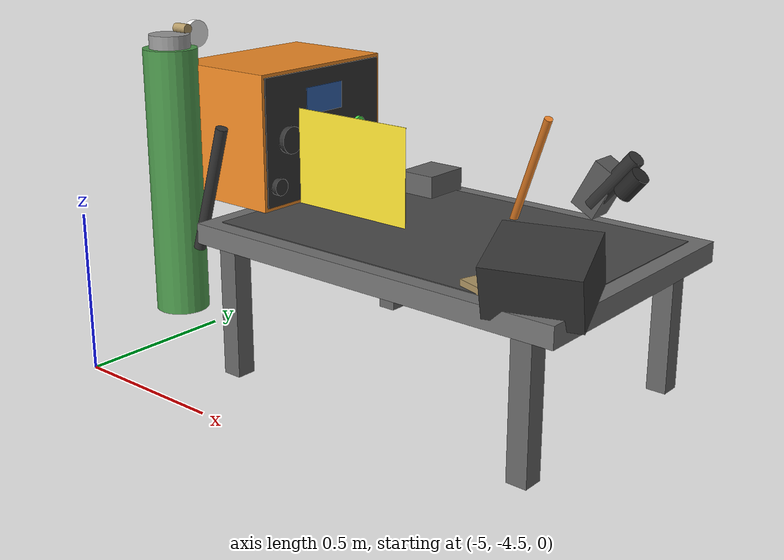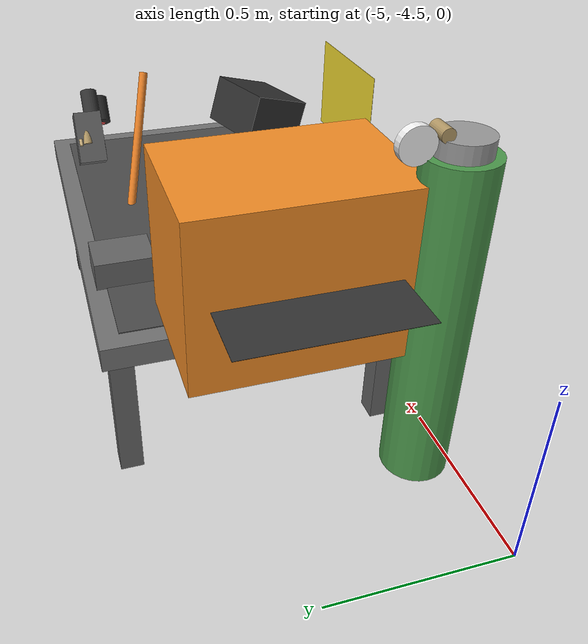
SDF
<?xml version="1.0"?>
<sdf version="1.6">
  <model name="welding_station">
    <pose>-4 -4 0.1 0 0 0</pose>
    <static>false</static>

    <!-- BASE E TAVOLO -->
    <link name="base">
      <pose>0 0 0 0 0 0</pose>
      <inertial>
        <mass>120.0</mass>
        <inertia>
          <ixx>10.0</ixx>
          <iyy>10.0</iyy>
          <izz>15.0</izz>
        </inertia>
      </inertial>

      <!-- Piano di lavoro in acciaio -->
      <visual name="work_table">
        <pose>0 0 0.4 0 0 0</pose>
        <geometry>
          <box>
            <size>1.2 0.8 0.06</size>
          </box>
        </geometry>
        <material>
          <ambient>0.35 0.35 0.35 1</ambient>
          <diffuse>0.45 0.45 0.45 1</diffuse>
        </material>
      </visual>

      <!-- Griglia fessurata sul piano -->
      <visual name="grid_slots">
        <pose>0 0 0.43 0 0 0</pose>
        <geometry>
          <box>
            <size>1.1 0.7 0.005</size>
          </box>
        </geometry>
        <material>
          <ambient>0.2 0.2 0.2 1</ambient>
          <diffuse>0.3 0.3 0.3 1</diffuse>
        </material>
      </visual>

      <!-- Gambe del tavolo -->
      <visual name="leg_fl">
        <pose>0.5 0.35 0.18 0 0 0</pose>
        <geometry>
          <box>
            <size>0.06 0.06 0.4</size>
          </box>
        </geometry>
        <material>
          <ambient>0.3 0.3 0.3 1</ambient>
          <diffuse>0.4 0.4 0.4 1</diffuse>
        </material>
      </visual>

      <visual name="leg_fr">
        <pose>0.5 -0.35 0.18 0 0 0</pose>
        <geometry>
          <box>
            <size>0.06 0.06 0.4</size>
          </box>
        </geometry>
        <material>
          <ambient>0.3 0.3 0.3 1</ambient>
          <diffuse>0.4 0.4 0.4 1</diffuse>
        </material>
      </visual>

      <visual name="leg_rl">
        <pose>-0.5 0.35 0.18 0 0 0</pose>
        <geometry>
          <box>
            <size>0.06 0.06 0.4</size>
          </box>
        </geometry>
        <material>
          <ambient>0.3 0.3 0.3 1</ambient>
          <diffuse>0.4 0.4 0.4 1</diffuse>
        </material>
      </visual>

      <visual name="leg_rr">
        <pose>-0.5 -0.35 0.18 0 0 0</pose>
        <geometry>
          <box>
            <size>0.06 0.06 0.4</size>
          </box>
        </geometry>
        <material>
          <ambient>0.3 0.3 0.3 1</ambient>
          <diffuse>0.4 0.4 0.4 1</diffuse>
        </material>
      </visual>

      <!-- Saldatrice (corpo principale) -->
      <visual name="welder_body">
        <pose>-0.65 0 0.65 0 0 0</pose>
        <geometry>
          <box>
            <size>0.35 0.5 0.4</size>
          </box>
        </geometry>
        <material>
          <ambient>0.85 0.45 0.1 1</ambient>
          <diffuse>0.95 0.55 0.15 1</diffuse>
        </material>
      </visual>

      <!-- Pannello frontale -->
      <visual name="front_panel">
        <pose>-0.475 0 0.65 0 0 0</pose>
        <geometry>
          <box>
            <size>0.005 0.48 0.38</size>
          </box>
        </geometry>
        <material>
          <ambient>0.15 0.15 0.15 1</ambient>
          <diffuse>0.2 0.2 0.2 1</diffuse>
        </material>
      </visual>

      <!-- Display LCD -->
      <visual name="display">
        <pose>-0.47 0 0.75 0 0 0</pose>
        <geometry>
          <box>
            <size>0.001 0.15 0.08</size>
          </box>
        </geometry>
        <material>
          <ambient>0.1 0.3 0.6 1</ambient>
          <diffuse>0.2 0.4 0.7 1</diffuse>
          <emissive>0.1 0.2 0.4 1</emissive>
        </material>
      </visual>

      <!-- Manopola regolazione corrente -->
      <visual name="current_dial">
        <pose>-0.47 -0.15 0.65 0 1.5708 0</pose>
        <geometry>
          <cylinder>
            <radius>0.04</radius>
            <length>0.03</length>
          </cylinder>
        </geometry>
        <material>
          <ambient>0.15 0.15 0.15 1</ambient>
          <diffuse>0.2 0.2 0.2 1</diffuse>
        </material>
      </visual>

      <!-- Indicatore sul dial -->
      <visual name="dial_indicator">
        <pose>-0.465 -0.15 0.68 0 1.5708 0</pose>
        <geometry>
          <box>
            <size>0.001 0.025 0.005</size>
          </box>
        </geometry>
        <material>
          <ambient>0.9 0.1 0.1 1</ambient>
          <diffuse>1.0 0.2 0.2 1</diffuse>
        </material>
      </visual>

      <!-- Pulsanti di controllo -->
      <visual name="power_button">
        <pose>-0.47 0.15 0.65 0 1.5708 0</pose>
        <geometry>
          <cylinder>
            <radius>0.02</radius>
            <length>0.015</length>
          </cylinder>
        </geometry>
        <material>
          <ambient>0.2 0.8 0.2 1</ambient>
          <diffuse>0.3 0.9 0.3 1</diffuse>
          <emissive>0.1 0.4 0.1 1</emissive>
        </material>
      </visual>

      <!-- LED di stato -->
      <visual name="status_led">
        <pose>-0.47 0.1 0.58 0 1.5708 0</pose>
        <geometry>
          <sphere>
            <radius>0.008</radius>
          </sphere>
        </geometry>
        <material>
          <ambient>0.2 0.8 0.2 1</ambient>
          <diffuse>0.3 0.9 0.3 1</diffuse>
          <emissive>0.2 0.6 0.2 1</emissive>
        </material>
      </visual>

      <!-- Prese connessioni -->
      <visual name="output_positive">
        <pose>-0.475 0.2 0.52 0 1.5708 0</pose>
        <geometry>
          <cylinder>
            <radius>0.025</radius>
            <length>0.04</length>
          </cylinder>
        </geometry>
        <material>
          <ambient>0.8 0.2 0.2 1</ambient>
          <diffuse>0.9 0.3 0.3 1</diffuse>
        </material>
      </visual>

      <visual name="output_negative">
        <pose>-0.475 -0.2 0.52 0 1.5708 0</pose>
        <geometry>
          <cylinder>
            <radius>0.025</radius>
            <length>0.04</length>
          </cylinder>
        </geometry>
        <material>
          <ambient>0.15 0.15 0.15 1</ambient>
          <diffuse>0.2 0.2 0.2 1</diffuse>
        </material>
      </visual>

      <!-- Griglia di ventilazione -->
      <visual name="vent_grille">
        <pose>-0.825 0 0.65 0 1.5708 0</pose>
        <geometry>
          <box>
            <size>0.001 0.4 0.3</size>
          </box>
        </geometry>
        <material>
          <ambient>0.15 0.15 0.15 1</ambient>
          <diffuse>0.2 0.2 0.2 1</diffuse>
        </material>
      </visual>

      <!-- Torcia di saldatura -->
      <visual name="torch_holder">
        <pose>0.3 0.3 0.55 0 0.5 0</pose>
        <geometry>
          <box>
            <size>0.08 0.08 0.15</size>
          </box>
        </geometry>
        <material>
          <ambient>0.25 0.25 0.25 1</ambient>
          <diffuse>0.35 0.35 0.35 1</diffuse>
        </material>
      </visual>

      <!-- Manico torcia -->
      <visual name="torch_handle">
        <pose>0.35 0.28 0.58 0 0.7 0</pose>
        <geometry>
          <cylinder>
            <radius>0.025</radius>
            <length>0.2</length>
          </cylinder>
        </geometry>
        <material>
          <ambient>0.15 0.15 0.15 1</ambient>
          <diffuse>0.2 0.2 0.2 1</diffuse>
        </material>
      </visual>

      <!-- Impugnatura isolata -->
      <visual name="torch_grip">
        <pose>0.42 0.25 0.59 0 0.7 0</pose>
        <geometry>
          <cylinder>
            <radius>0.028</radius>
            <length>0.08</length>
          </cylinder>
        </geometry>
        <material>
          <ambient>0.1 0.1 0.1 1</ambient>
          <diffuse>0.15 0.15 0.15 1</diffuse>
        </material>
      </visual>

      <!-- Ugello torcia -->
      <visual name="torch_nozzle">
        <pose>0.28 0.31 0.57 0 0.7 0</pose>
        <geometry>
          <cylinder>
            <radius>0.015</radius>
            <length>0.06</length>
          </cylinder>
        </geometry>
        <material>
          <ambient>0.6 0.5 0.3 1</ambient>
          <diffuse>0.7 0.6 0.4 1</diffuse>
        </material>
      </visual>

      <!-- Punta di contatto -->
      <visual name="contact_tip">
        <pose>0.25 0.33 0.56 0 0.7 0</pose>
        <geometry>
          <cylinder>
            <radius>0.005</radius>
            <length>0.02</length>
          </cylinder>
        </geometry>
        <material>
          <ambient>0.7 0.6 0.4 1</ambient>
          <diffuse>0.8 0.7 0.5 1</diffuse>
          <emissive>0.1 0.1 0.05 1</emissive>
        </material>
      </visual>

      <!-- Grilletto -->
      <visual name="trigger">
        <pose>0.4 0.26 0.56 0 0.7 0.3</pose>
        <geometry>
          <box>
            <size>0.015 0.04 0.02</size>
          </box>
        </geometry>
        <material>
          <ambient>0.8 0.2 0.2 1</ambient>
          <diffuse>0.9 0.3 0.3 1</diffuse>
        </material>
      </visual>

      <!-- Cavi -->
      <visual name="power_cable">
        <pose>-0.65 -0.3 0.5 0 0.3 0</pose>
        <geometry>
          <cylinder>
            <radius>0.018</radius>
            <length>0.4</length>
          </cylinder>
        </geometry>
        <material>
          <ambient>0.15 0.15 0.15 1</ambient>
          <diffuse>0.2 0.2 0.2 1</diffuse>
        </material>
      </visual>

      <visual name="torch_cable">
        <pose>0.1 0.2 0.5 0 0.5 -0.5</pose>
        <geometry>
          <cylinder>
            <radius>0.012</radius>
            <length>0.6</length>
          </cylinder>
        </geometry>
        <material>
          <ambient>0.8 0.4 0.1 1</ambient>
          <diffuse>0.9 0.5 0.15 1</diffuse>
        </material>
      </visual>

      <!-- Bombola gas (argon/CO2) -->
      <visual name="gas_cylinder">
        <pose>-0.8 -0.3 0.5 0 0 0</pose>
        <geometry>
          <cylinder>
            <radius>0.08</radius>
            <length>0.8</length>
          </cylinder>
        </geometry>
        <material>
          <ambient>0.2 0.5 0.2 1</ambient>
          <diffuse>0.3 0.6 0.3 1</diffuse>
        </material>
      </visual>

      <!-- Testa bombola -->
      <visual name="cylinder_cap">
        <pose>-0.8 -0.3 0.91 0 0 0</pose>
        <geometry>
          <cylinder>
            <radius>0.06</radius>
            <length>0.06</length>
          </cylinder>
        </geometry>
        <material>
          <ambient>0.5 0.5 0.5 1</ambient>
          <diffuse>0.6 0.6 0.6 1</diffuse>
        </material>
      </visual>

      <!-- Valvola bombola -->
      <visual name="valve">
        <pose>-0.8 -0.25 0.95 0 1.5708 0</pose>
        <geometry>
          <cylinder>
            <radius>0.015</radius>
            <length>0.05</length>
          </cylinder>
        </geometry>
        <material>
          <ambient>0.6 0.5 0.3 1</ambient>
          <diffuse>0.7 0.6 0.4 1</diffuse>
        </material>
      </visual>

      <!-- Manometro riduttore -->
      <visual name="regulator_gauge">
        <pose>-0.8 -0.2 0.93 0 1.5708 0</pose>
        <geometry>
          <cylinder>
            <radius>0.04</radius>
            <length>0.02</length>
          </cylinder>
        </geometry>
        <material>
          <ambient>0.9 0.9 0.9 1</ambient>
          <diffuse>0.95 0.95 0.95 1</diffuse>
        </material>
      </visual>

      <!-- Maschera di protezione -->
      <visual name="welding_mask">
        <pose>0.5 -0.3 0.5 0.3 0 0.3</pose>
        <geometry>
          <box>
            <size>0.25 0.2 0.15</size>
          </box>
        </geometry>
        <material>
          <ambient>0.15 0.15 0.15 1</ambient>
          <diffuse>0.2 0.2 0.2 1</diffuse>
        </material>
      </visual>

      <!-- Vetro oscurato maschera -->
      <visual name="mask_lens">
        <pose>0.625 -0.3 0.5 0.3 0 0.3</pose>
        <geometry>
          <box>
            <size>0.002 0.12 0.08</size>
          </box>
        </geometry>
        <material>
          <ambient>0.05 0.15 0.05 1</ambient>
          <diffuse>0.1 0.2 0.1 1</diffuse>
          <emissive>0.05 0.1 0.05 1</emissive>
        </material>
      </visual>

      <!-- Guanti da saldatura -->
      <visual name="glove_left">
        <pose>0.4 -0.25 0.44 0 0 0.5</pose>
        <geometry>
          <box>
            <size>0.12 0.06 0.02</size>
          </box>
        </geometry>
        <material>
          <ambient>0.6 0.5 0.3 1</ambient>
          <diffuse>0.7 0.6 0.4 1</diffuse>
        </material>
      </visual>

      <visual name="glove_right">
        <pose>0.35 -0.32 0.44 0 0 -0.3</pose>
        <geometry>
          <box>
            <size>0.12 0.06 0.02</size>
          </box>
        </geometry>
        <material>
          <ambient>0.6 0.5 0.3 1</ambient>
          <diffuse>0.7 0.6 0.4 1</diffuse>
        </material>
      </visual>

      <!-- Morsa da banco -->
      <visual name="vise">
        <pose>-0.3 0.3 0.46 0 0 0</pose>
        <geometry>
          <box>
            <size>0.12 0.15 0.08</size>
          </box>
        </geometry>
        <material>
          <ambient>0.3 0.3 0.3 1</ambient>
          <diffuse>0.4 0.4 0.4 1</diffuse>
        </material>
      </visual>

      <!-- Cartello di sicurezza -->
      <visual name="warning_sign">
        <pose>0 -0.41 0.7 0 0 0</pose>
        <geometry>
          <box>
            <size>0.35 0.001 0.25</size>
          </box>
        </geometry>
        <material>
          <ambient>1.0 0.8 0.0 1</ambient>
          <diffuse>1.0 0.9 0.2 1</diffuse>
        </material>
      </visual>

      <!-- Collision -->
      <collision name="table_collision">
        <pose>0 0 0.4 0 0 0</pose>
        <geometry>
          <box>
            <size>1.2 0.8 0.06</size>
          </box>
        </geometry>
      </collision>

      <collision name="welder_collision">
        <pose>-0.65 0 0.65 0 0 0</pose>
        <geometry>
          <box>
            <size>0.35 0.5 0.4</size>
          </box>
        </geometry>
      </collision>

      <collision name="cylinder_collision">
        <pose>-0.8 -0.3 0.5 0 0 0</pose>
        <geometry>
          <cylinder>
            <radius>0.08</radius>
            <length>0.8</length>
          </cylinder>
        </geometry>
      </collision>
    </link>
  </model>
</sdf>
